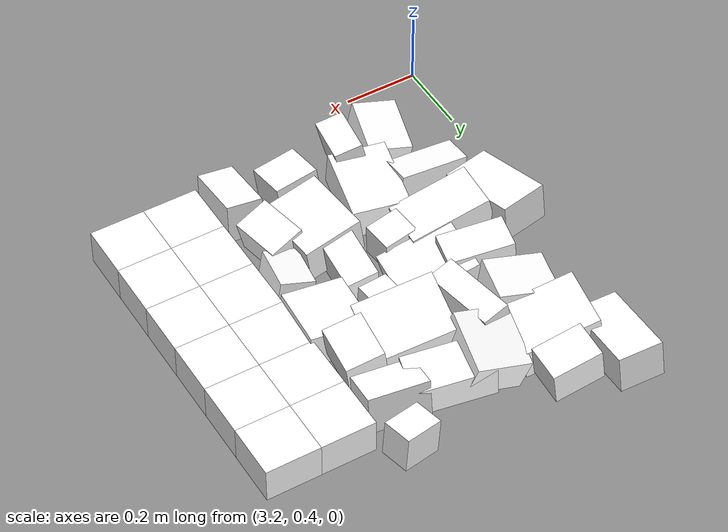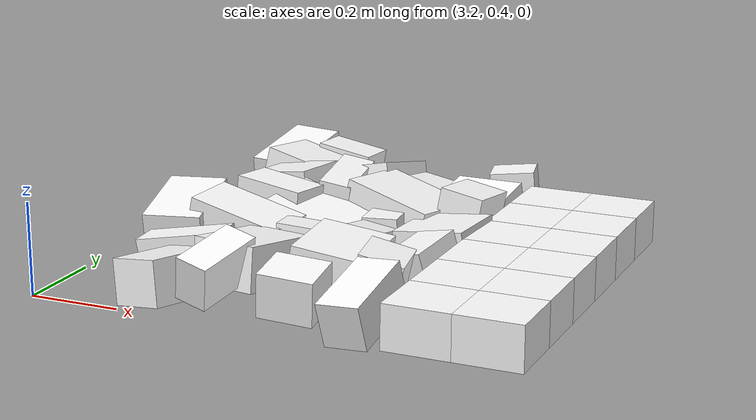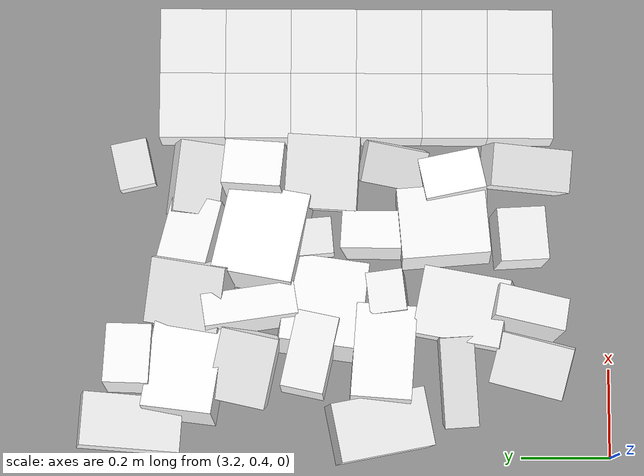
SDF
<sdf version="1.7">
 <world name="default">
  <include><uri>model://sun</uri></include>
  <model name="static_environment">
   <static>true</static>
   <link name="region_416">
    <pose>3.409568557230452 0.5740635696975417 0.017772146240051134 -0.08263796126161371 -0.1612468163916323 -0.2459983301088594</pose>
    <collision name="region_416_collision">
     <geometry><box><size>0.11851829048817407 0.16897940878838555 0.1</size></box></geometry>
     <surface><friction><ode><mu>1.0</mu><mu2>1.0</mu2></ode></friction></surface>
    </collision>
    <visual name="region_416_visual">
     <geometry><box><size>0.11851829048817407 0.16897940878838555 0.1</size></box></geometry>
     <material><ambient>1.0 1.0 1.0 1.0</ambient><diffuse>1.0 1.0 1.0 1.0</diffuse></material>
    </visual>
   </link>
   <link name="region_417">
    <pose>3.5250783112211304 0.5889400942157199 0.04843091644849834 0.18679127561850645 0.20639199708541217 -0.16505086953405723</pose>
    <collision name="region_417_collision">
     <geometry><box><size>0.07656576031420817 0.1646188206958685 0.1</size></box></geometry>
     <surface><friction><ode><mu>1.0</mu><mu2>1.0</mu2></ode></friction></surface>
    </collision>
    <visual name="region_417_visual">
     <geometry><box><size>0.07656576031420817 0.1646188206958685 0.1</size></box></geometry>
     <material><ambient>1.0 1.0 1.0 1.0</ambient><diffuse>1.0 1.0 1.0 1.0</diffuse></material>
    </visual>
   </link>
   <link name="region_418">
    <pose>3.699457298189503 0.6026366045741108 0.020272719354250512 0.12120515658839681 0.07186650788260135 0.07967167535733533</pose>
    <collision name="region_418_collision">
     <geometry><box><size>0.12252118510335676 0.1112670353571094 0.1</size></box></geometry>
     <surface><friction><ode><mu>1.0</mu><mu2>1.0</mu2></ode></friction></surface>
    </collision>
    <visual name="region_418_visual">
     <geometry><box><size>0.12252118510335676 0.1112670353571094 0.1</size></box></geometry>
     <material><ambient>1.0 1.0 1.0 1.0</ambient><diffuse>1.0 1.0 1.0 1.0</diffuse></material>
    </visual>
   </link>
   <link name="region_419">
    <pose>3.858486855736941 0.5878938617538982 0.018791394765972996 0.24431393258757367 -0.07770252986004095 -0.07827749967436243</pose>
    <collision name="region_419_collision">
     <geometry><box><size>0.09738355279015998 0.18698756847086337 0.1</size></box></geometry>
     <surface><friction><ode><mu>1.0</mu><mu2>1.0</mu2></ode></friction></surface>
    </collision>
    <visual name="region_419_visual">
     <geometry><box><size>0.09738355279015998 0.18698756847086337 0.1</size></box></geometry>
     <material><ambient>1.0 1.0 1.0 1.0</ambient><diffuse>1.0 1.0 1.0 1.0</diffuse></material>
    </visual>
   </link>
   <link name="region_436">
    <pose>3.3744455925659835 0.742554944582105 0.012468176145026011 0.006311672440037053 -0.17825987154003414 0.07082775066786079</pose>
    <collision name="region_436_collision">
     <geometry><box><size>0.20456277387589664 0.07707938721720528 0.1</size></box></geometry>
     <surface><friction><ode><mu>1.0</mu><mu2>1.0</mu2></ode></friction></surface>
    </collision>
    <visual name="region_436_visual">
     <geometry><box><size>0.20456277387589664 0.07707938721720528 0.1</size></box></geometry>
     <material><ambient>1.0 1.0 1.0 1.0</ambient><diffuse>1.0 1.0 1.0 1.0</diffuse></material>
    </visual>
   </link>
   <link name="region_437">
    <pose>3.5361474944772002 0.7302633432979626 0.02632163822087232 -0.12907229563369083 -0.021892943865762793 -0.19175899432654037</pose>
    <collision name="region_437_collision">
     <geometry><box><size>0.15586582556977865 0.19948712636549865 0.1</size></box></geometry>
     <surface><friction><ode><mu>1.0</mu><mu2>1.0</mu2></ode></friction></surface>
    </collision>
    <visual name="region_437_visual">
     <geometry><box><size>0.15586582556977865 0.19948712636549865 0.1</size></box></geometry>
     <material><ambient>1.0 1.0 1.0 1.0</ambient><diffuse>1.0 1.0 1.0 1.0</diffuse></material>
    </visual>
   </link>
   <link name="region_438">
    <pose>3.724739914677624 0.7770376243224054 0.029076468464325697 0.0073451529404567895 0.13835810596043274 0.08604866304103725</pose>
    <collision name="region_438_collision">
     <geometry><box><size>0.16497099421032754 0.20049523390078045 0.1</size></box></geometry>
     <surface><friction><ode><mu>1.0</mu><mu2>1.0</mu2></ode></friction></surface>
    </collision>
    <visual name="region_438_visual">
     <geometry><box><size>0.16497099421032754 0.20049523390078045 0.1</size></box></geometry>
     <material><ambient>1.0 1.0 1.0 1.0</ambient><diffuse>1.0 1.0 1.0 1.0</diffuse></material>
    </visual>
   </link>
   <link name="region_439">
    <pose>3.829263559639821 0.7540020958382609 0.025455154484173705 -0.023110741954973257 0.24550563598248448 0.20007327616763004</pose>
    <collision name="region_439_collision">
     <geometry><box><size>0.09956813109950557 0.13913375327888608 0.1</size></box></geometry>
     <surface><friction><ode><mu>1.0</mu><mu2>1.0</mu2></ode></friction></surface>
    </collision>
    <visual name="region_439_visual">
     <geometry><box><size>0.09956813109950557 0.13913375327888608 0.1</size></box></geometry>
     <material><ambient>1.0 1.0 1.0 1.0</ambient><diffuse>1.0 1.0 1.0 1.0</diffuse></material>
    </visual>
   </link>
   <link name="region_455">
    <pose>3.2697928179160254 0.9204293992530996 0.03466975690956068 0.1489588365182375 -0.01771530415874556 0.19995610405276854</pose>
    <collision name="region_455_collision">
     <geometry><box><size>0.13398832391026191 0.2153750286485532 0.1</size></box></geometry>
     <surface><friction><ode><mu>1.0</mu><mu2>1.0</mu2></ode></friction></surface>
    </collision>
    <visual name="region_455_visual">
     <geometry><box><size>0.13398832391026191 0.2153750286485532 0.1</size></box></geometry>
     <material><ambient>1.0 1.0 1.0 1.0</ambient><diffuse>1.0 1.0 1.0 1.0</diffuse></material>
    </visual>
   </link>
   <link name="region_456">
    <pose>3.4243353896437636 0.912754932350764 0.03209985102498982 0.012905547001975826 0.22210709675690143 -0.06873372533950062</pose>
    <collision name="region_456_collision">
     <geometry><box><size>0.22055254854479442 0.1366784752471267 0.1</size></box></geometry>
     <surface><friction><ode><mu>1.0</mu><mu2>1.0</mu2></ode></friction></surface>
    </collision>
    <visual name="region_456_visual">
     <geometry><box><size>0.22055254854479442 0.1366784752471267 0.1</size></box></geometry>
     <material><ambient>1.0 1.0 1.0 1.0</ambient><diffuse>1.0 1.0 1.0 1.0</diffuse></material>
    </visual>
   </link>
   <link name="region_457">
    <pose>3.568486577146472 0.9022701116510494 0.01196513145798635 -0.0789084575708246 0.07882783631365653 0.12430589029508676</pose>
    <collision name="region_457_collision">
     <geometry><box><size>0.0959835802704287 0.0840426457400242 0.1</size></box></geometry>
     <surface><friction><ode><mu>1.0</mu><mu2>1.0</mu2></ode></friction></surface>
    </collision>
    <visual name="region_457_visual">
     <geometry><box><size>0.0959835802704287 0.0840426457400242 0.1</size></box></geometry>
     <material><ambient>1.0 1.0 1.0 1.0</ambient><diffuse>1.0 1.0 1.0 1.0</diffuse></material>
    </visual>
   </link>
   <link name="region_458">
    <pose>3.7062465516908443 0.9177114648559197 0.011215062564066564 -0.1692245233500841 0.12528366364208948 -0.056062136341737956</pose>
    <collision name="region_458_collision">
     <geometry><box><size>0.08780393824888337 0.16833462766891255 0.1</size></box></geometry>
     <surface><friction><ode><mu>1.0</mu><mu2>1.0</mu2></ode></friction></surface>
    </collision>
    <visual name="region_458_visual">
     <geometry><box><size>0.08780393824888337 0.16833462766891255 0.1</size></box></geometry>
     <material><ambient>1.0 1.0 1.0 1.0</ambient><diffuse>1.0 1.0 1.0 1.0</diffuse></material>
    </visual>
   </link>
   <link name="region_459">
    <pose>3.8678938278628303 0.8907495502539418 0.009943398821511308 0.1328100015613125 -0.2171663236751663 -0.20220708154311967</pose>
    <collision name="region_459_collision">
     <geometry><box><size>0.09323084729013409 0.14065479251009633 0.1</size></box></geometry>
     <surface><friction><ode><mu>1.0</mu><mu2>1.0</mu2></ode></friction></surface>
    </collision>
    <visual name="region_459_visual">
     <geometry><box><size>0.09323084729013409 0.14065479251009633 0.1</size></box></geometry>
     <material><ambient>1.0 1.0 1.0 1.0</ambient><diffuse>1.0 1.0 1.0 1.0</diffuse></material>
    </visual>
   </link>
   <link name="region_476">
    <pose>3.427902019239056 1.077140306606419 0.0481694080268449 -0.03278283385112546 0.07225885500322915 -0.21072414443871662</pose>
    <collision name="region_476_collision">
     <geometry><box><size>0.17652858064480959 0.09761456554277732 0.1</size></box></geometry>
     <surface><friction><ode><mu>1.0</mu><mu2>1.0</mu2></ode></friction></surface>
    </collision>
    <visual name="region_476_visual">
     <geometry><box><size>0.17652858064480959 0.09761456554277732 0.1</size></box></geometry>
     <material><ambient>1.0 1.0 1.0 1.0</ambient><diffuse>1.0 1.0 1.0 1.0</diffuse></material>
    </visual>
   </link>
   <link name="region_477">
    <pose>3.539306322221983 1.0504372923661838 0.009841480581146768 0.06480472551673488 0.24451500826543682 -0.11337944155835972</pose>
    <collision name="region_477_collision">
     <geometry><box><size>0.20808565689236805 0.18398983290280238 0.1</size></box></geometry>
     <surface><friction><ode><mu>1.0</mu><mu2>1.0</mu2></ode></friction></surface>
    </collision>
    <visual name="region_477_visual">
     <geometry><box><size>0.20808565689236805 0.18398983290280238 0.1</size></box></geometry>
     <material><ambient>1.0 1.0 1.0 1.0</ambient><diffuse>1.0 1.0 1.0 1.0</diffuse></material>
    </visual>
   </link>
   <link name="region_478">
    <pose>3.6995677545609524 1.0731080269256963 0.0025058073173760687 -0.0009050964292098285 -0.040364566616187036 0.09104878019385937</pose>
    <collision name="region_478_collision">
     <geometry><box><size>0.08336678809866709 0.08917953976129367 0.1</size></box></geometry>
     <surface><friction><ode><mu>1.0</mu><mu2>1.0</mu2></ode></friction></surface>
    </collision>
    <visual name="region_478_visual">
     <geometry><box><size>0.08336678809866709 0.08917953976129367 0.1</size></box></geometry>
     <material><ambient>1.0 1.0 1.0 1.0</ambient><diffuse>1.0 1.0 1.0 1.0</diffuse></material>
    </visual>
   </link>
   <link name="region_479">
    <pose>3.850606828634568 1.051388453092877 0.004794749200065185 -0.017132593053686418 -0.1159189016505972 -0.056698449934914685</pose>
    <collision name="region_479_collision">
     <geometry><box><size>0.1680042624348622 0.16523833490421933 0.1</size></box></geometry>
     <surface><friction><ode><mu>1.0</mu><mu2>1.0</mu2></ode></friction></surface>
    </collision>
    <visual name="region_479_visual">
     <geometry><box><size>0.1680042624348622 0.16523833490421933 0.1</size></box></geometry>
     <material><ambient>1.0 1.0 1.0 1.0</ambient><diffuse>1.0 1.0 1.0 1.0</diffuse></material>
    </visual>
   </link>
   <link name="region_496">
    <pose>3.4014265661458714 1.2254377995818682 0.03919072840014507 -0.014704855726002553 -0.17568101276567738 -0.21347694851482069</pose>
    <collision name="region_496_collision">
     <geometry><box><size>0.16148060317409516 0.13116765023311516 0.1</size></box></geometry>
     <surface><friction><ode><mu>1.0</mu><mu2>1.0</mu2></ode></friction></surface>
    </collision>
    <visual name="region_496_visual">
     <geometry><box><size>0.16148060317409516 0.13116765023311516 0.1</size></box></geometry>
     <material><ambient>1.0 1.0 1.0 1.0</ambient><diffuse>1.0 1.0 1.0 1.0</diffuse></material>
    </visual>
   </link>
   <link name="region_497">
    <pose>3.530051304108966 1.2146092063318517 0.048927856667056874 0.04160877608265512 0.1769217869342865 0.1608075505904668</pose>
    <collision name="region_497_collision">
     <geometry><box><size>0.07534728530428075 0.2108118419155048 0.1</size></box></geometry>
     <surface><friction><ode><mu>1.0</mu><mu2>1.0</mu2></ode></friction></surface>
    </collision>
    <visual name="region_497_visual">
     <geometry><box><size>0.07534728530428075 0.2108118419155048 0.1</size></box></geometry>
     <material><ambient>1.0 1.0 1.0 1.0</ambient><diffuse>1.0 1.0 1.0 1.0</diffuse></material>
    </visual>
   </link>
   <link name="region_498">
    <pose>3.6945951471787684 1.188478945813619 0.026375391943081777 -0.08812952643299632 0.22239970053089525 -0.2064323481017567</pose>
    <collision name="region_498_collision">
     <geometry><box><size>0.216247151382206 0.18567707261419836 0.1</size></box></geometry>
     <surface><friction><ode><mu>1.0</mu><mu2>1.0</mu2></ode></friction></surface>
    </collision>
    <visual name="region_498_visual">
     <geometry><box><size>0.216247151382206 0.18567707261419836 0.1</size></box></geometry>
     <material><ambient>1.0 1.0 1.0 1.0</ambient><diffuse>1.0 1.0 1.0 1.0</diffuse></material>
    </visual>
   </link>
   <link name="region_499">
    <pose>3.8529756990387556 1.2050743416240106 0.04205347576715232 -0.10007524107078969 0.15243612454562933 -0.0963359192507866</pose>
    <collision name="region_499_collision">
     <geometry><box><size>0.10450879493199686 0.13548722709413455 0.1</size></box></geometry>
     <surface><friction><ode><mu>1.0</mu><mu2>1.0</mu2></ode></friction></surface>
    </collision>
    <visual name="region_499_visual">
     <geometry><box><size>0.10450879493199686 0.13548722709413455 0.1</size></box></geometry>
     <material><ambient>1.0 1.0 1.0 1.0</ambient><diffuse>1.0 1.0 1.0 1.0</diffuse></material>
    </visual>
   </link>
   <link name="region_516">
    <pose>3.3925043123250918 1.358552863556341 0.029812675924992205 -0.10421538335732533 0.20051497950389108 -0.1466731670166992</pose>
    <collision name="region_516_collision">
     <geometry><box><size>0.21086908692705844 0.1608902542087511 0.1</size></box></geometry>
     <surface><friction><ode><mu>1.0</mu><mu2>1.0</mu2></ode></friction></surface>
    </collision>
    <visual name="region_516_visual">
     <geometry><box><size>0.21086908692705844 0.1608902542087511 0.1</size></box></geometry>
     <material><ambient>1.0 1.0 1.0 1.0</ambient><diffuse>1.0 1.0 1.0 1.0</diffuse></material>
    </visual>
   </link>
   <link name="region_517">
    <pose>3.56920070239366 1.349916648798338 0.03129251016251163 -0.20471145422500292 -0.2305107466006 -0.13613345804664412</pose>
    <collision name="region_517_collision">
     <geometry><box><size>0.14883329553901728 0.17398519567534498 0.1</size></box></geometry>
     <surface><friction><ode><mu>1.0</mu><mu2>1.0</mu2></ode></friction></surface>
    </collision>
    <visual name="region_517_visual">
     <geometry><box><size>0.14883329553901728 0.17398519567534498 0.1</size></box></geometry>
     <material><ambient>1.0 1.0 1.0 1.0</ambient><diffuse>1.0 1.0 1.0 1.0</diffuse></material>
    </visual>
   </link>
   <link name="region_518">
    <pose>3.6795439664002814 1.3552784329011327 0.007261908379363591 -0.12989685375561155 0.08765940378338455 -0.24288262735941685</pose>
    <collision name="region_518_collision">
     <geometry><box><size>0.21415724890823892 0.11387425461242218 0.1</size></box></geometry>
     <surface><friction><ode><mu>1.0</mu><mu2>1.0</mu2></ode></friction></surface>
    </collision>
    <visual name="region_518_visual">
     <geometry><box><size>0.21415724890823892 0.11387425461242218 0.1</size></box></geometry>
     <material><ambient>1.0 1.0 1.0 1.0</ambient><diffuse>1.0 1.0 1.0 1.0</diffuse></material>
    </visual>
   </link>
   <link name="region_519">
    <pose>3.8333141721172463 1.340751848042755 0.007795720583491889 0.2198593919621069 -0.036365169452325485 -0.11525207191351639</pose>
    <collision name="region_519_collision">
     <geometry><box><size>0.16416076170619806 0.10622455494024315 0.1</size></box></geometry>
     <surface><friction><ode><mu>1.0</mu><mu2>1.0</mu2></ode></friction></surface>
    </collision>
    <visual name="region_519_visual">
     <geometry><box><size>0.16416076170619806 0.10622455494024315 0.1</size></box></geometry>
     <material><ambient>1.0 1.0 1.0 1.0</ambient><diffuse>1.0 1.0 1.0 1.0</diffuse></material>
    </visual>
   </link>
   <link name="region_535">
    <pose>3.274006095222062 1.4844915536073975 0.021297336469980128 0.15818253985080866 0.03394616841524495 -0.06425970308673329</pose>
    <collision name="region_535_collision">
     <geometry><box><size>0.12095090418604272 0.224739495464232 0.1</size></box></geometry>
     <surface><friction><ode><mu>1.0</mu><mu2>1.0</mu2></ode></friction></surface>
    </collision>
    <visual name="region_535_visual">
     <geometry><box><size>0.12095090418604272 0.224739495464232 0.1</size></box></geometry>
     <material><ambient>1.0 1.0 1.0 1.0</ambient><diffuse>1.0 1.0 1.0 1.0</diffuse></material>
    </visual>
   </link>
   <link name="region_536">
    <pose>3.4211584925117293 1.4856574349187828 0.029238206458930938 -0.05363359997818429 0.1552629733575982 -0.042139750599020476</pose>
    <collision name="region_536_collision">
     <geometry><box><size>0.13699257528748074 0.10370538693956385 0.1</size></box></geometry>
     <surface><friction><ode><mu>1.0</mu><mu2>1.0</mu2></ode></friction></surface>
    </collision>
    <visual name="region_536_visual">
     <geometry><box><size>0.13699257528748074 0.10370538693956385 0.1</size></box></geometry>
     <material><ambient>1.0 1.0 1.0 1.0</ambient><diffuse>1.0 1.0 1.0 1.0</diffuse></material>
    </visual>
   </link>
   <link name="region_539">
    <pose>3.863448596192322 1.4835066311508627 0.020929348149615713 0.017284858585840723 -0.09719315389216904 0.21784508462511093</pose>
    <collision name="region_539_collision">
     <geometry><box><size>0.10582122075447274 0.08154338717244526 0.1</size></box></geometry>
     <surface><friction><ode><mu>1.0</mu><mu2>1.0</mu2></ode></friction></surface>
    </collision>
    <visual name="region_539_visual">
     <geometry><box><size>0.10582122075447274 0.08154338717244526 0.1</size></box></geometry>
     <material><ambient>1.0 1.0 1.0 1.0</ambient><diffuse>1.0 1.0 1.0 1.0</diffuse></material>
    </visual>
   </link>
   <link name="region_800">
    <pose>4.0 0.6 0.0 0.0 0.0 0.0</pose>
    <collision name="region_800_collision">
     <geometry><box><size>0.15 0.15 0.1</size></box></geometry>
     <surface><friction><ode><mu>1.0</mu><mu2>1.0</mu2></ode></friction></surface>
    </collision>
    <visual name="region_800_visual">
     <geometry><box><size>0.15 0.15 0.1</size></box></geometry>
     <material><ambient>1.0 1.0 1.0 1.0</ambient><diffuse>1.0 1.0 1.0 1.0</diffuse></material>
    </visual>
   </link>
   <link name="region_801">
    <pose>4.15 0.6 0.0 0.0 0.0 0.0</pose>
    <collision name="region_801_collision">
     <geometry><box><size>0.15 0.15 0.1</size></box></geometry>
     <surface><friction><ode><mu>1.0</mu><mu2>1.0</mu2></ode></friction></surface>
    </collision>
    <visual name="region_801_visual">
     <geometry><box><size>0.15 0.15 0.1</size></box></geometry>
     <material><ambient>1.0 1.0 1.0 1.0</ambient><diffuse>1.0 1.0 1.0 1.0</diffuse></material>
    </visual>
   </link>
   <link name="region_820">
    <pose>4.0 0.75 0.0 0.0 0.0 0.0</pose>
    <collision name="region_820_collision">
     <geometry><box><size>0.15 0.15 0.1</size></box></geometry>
     <surface><friction><ode><mu>1.0</mu><mu2>1.0</mu2></ode></friction></surface>
    </collision>
    <visual name="region_820_visual">
     <geometry><box><size>0.15 0.15 0.1</size></box></geometry>
     <material><ambient>1.0 1.0 1.0 1.0</ambient><diffuse>1.0 1.0 1.0 1.0</diffuse></material>
    </visual>
   </link>
   <link name="region_821">
    <pose>4.15 0.75 0.0 0.0 0.0 0.0</pose>
    <collision name="region_821_collision">
     <geometry><box><size>0.15 0.15 0.1</size></box></geometry>
     <surface><friction><ode><mu>1.0</mu><mu2>1.0</mu2></ode></friction></surface>
    </collision>
    <visual name="region_821_visual">
     <geometry><box><size>0.15 0.15 0.1</size></box></geometry>
     <material><ambient>1.0 1.0 1.0 1.0</ambient><diffuse>1.0 1.0 1.0 1.0</diffuse></material>
    </visual>
   </link>
   <link name="region_840">
    <pose>4.0 0.8999999999999999 0.0 0.0 0.0 0.0</pose>
    <collision name="region_840_collision">
     <geometry><box><size>0.15 0.15 0.1</size></box></geometry>
     <surface><friction><ode><mu>1.0</mu><mu2>1.0</mu2></ode></friction></surface>
    </collision>
    <visual name="region_840_visual">
     <geometry><box><size>0.15 0.15 0.1</size></box></geometry>
     <material><ambient>1.0 1.0 1.0 1.0</ambient><diffuse>1.0 1.0 1.0 1.0</diffuse></material>
    </visual>
   </link>
   <link name="region_841">
    <pose>4.15 0.8999999999999999 0.0 0.0 0.0 0.0</pose>
    <collision name="region_841_collision">
     <geometry><box><size>0.15 0.15 0.1</size></box></geometry>
     <surface><friction><ode><mu>1.0</mu><mu2>1.0</mu2></ode></friction></surface>
    </collision>
    <visual name="region_841_visual">
     <geometry><box><size>0.15 0.15 0.1</size></box></geometry>
     <material><ambient>1.0 1.0 1.0 1.0</ambient><diffuse>1.0 1.0 1.0 1.0</diffuse></material>
    </visual>
   </link>
   <link name="region_860">
    <pose>4.0 1.0499999999999998 0.0 0.0 0.0 0.0</pose>
    <collision name="region_860_collision">
     <geometry><box><size>0.15 0.15 0.1</size></box></geometry>
     <surface><friction><ode><mu>1.0</mu><mu2>1.0</mu2></ode></friction></surface>
    </collision>
    <visual name="region_860_visual">
     <geometry><box><size>0.15 0.15 0.1</size></box></geometry>
     <material><ambient>1.0 1.0 1.0 1.0</ambient><diffuse>1.0 1.0 1.0 1.0</diffuse></material>
    </visual>
   </link>
   <link name="region_861">
    <pose>4.15 1.0499999999999998 0.0 0.0 0.0 0.0</pose>
    <collision name="region_861_collision">
     <geometry><box><size>0.15 0.15 0.1</size></box></geometry>
     <surface><friction><ode><mu>1.0</mu><mu2>1.0</mu2></ode></friction></surface>
    </collision>
    <visual name="region_861_visual">
     <geometry><box><size>0.15 0.15 0.1</size></box></geometry>
     <material><ambient>1.0 1.0 1.0 1.0</ambient><diffuse>1.0 1.0 1.0 1.0</diffuse></material>
    </visual>
   </link>
   <link name="region_880">
    <pose>4.0 1.2 0.0 0.0 0.0 0.0</pose>
    <collision name="region_880_collision">
     <geometry><box><size>0.15 0.15 0.1</size></box></geometry>
     <surface><friction><ode><mu>1.0</mu><mu2>1.0</mu2></ode></friction></surface>
    </collision>
    <visual name="region_880_visual">
     <geometry><box><size>0.15 0.15 0.1</size></box></geometry>
     <material><ambient>1.0 1.0 1.0 1.0</ambient><diffuse>1.0 1.0 1.0 1.0</diffuse></material>
    </visual>
   </link>
   <link name="region_881">
    <pose>4.15 1.2 0.0 0.0 0.0 0.0</pose>
    <collision name="region_881_collision">
     <geometry><box><size>0.15 0.15 0.1</size></box></geometry>
     <surface><friction><ode><mu>1.0</mu><mu2>1.0</mu2></ode></friction></surface>
    </collision>
    <visual name="region_881_visual">
     <geometry><box><size>0.15 0.15 0.1</size></box></geometry>
     <material><ambient>1.0 1.0 1.0 1.0</ambient><diffuse>1.0 1.0 1.0 1.0</diffuse></material>
    </visual>
   </link>
   <link name="region_900">
    <pose>4.0 1.35 0.0 0.0 0.0 0.0</pose>
    <collision name="region_900_collision">
     <geometry><box><size>0.15 0.15 0.1</size></box></geometry>
     <surface><friction><ode><mu>1.0</mu><mu2>1.0</mu2></ode></friction></surface>
    </collision>
    <visual name="region_900_visual">
     <geometry><box><size>0.15 0.15 0.1</size></box></geometry>
     <material><ambient>1.0 1.0 1.0 1.0</ambient><diffuse>1.0 1.0 1.0 1.0</diffuse></material>
    </visual>
   </link>
   <link name="region_901">
    <pose>4.15 1.35 0.0 0.0 0.0 0.0</pose>
    <collision name="region_901_collision">
     <geometry><box><size>0.15 0.15 0.1</size></box></geometry>
     <surface><friction><ode><mu>1.0</mu><mu2>1.0</mu2></ode></friction></surface>
    </collision>
    <visual name="region_901_visual">
     <geometry><box><size>0.15 0.15 0.1</size></box></geometry>
     <material><ambient>1.0 1.0 1.0 1.0</ambient><diffuse>1.0 1.0 1.0 1.0</diffuse></material>
    </visual>
   </link>
  </model>
 </world>
</sdf>
